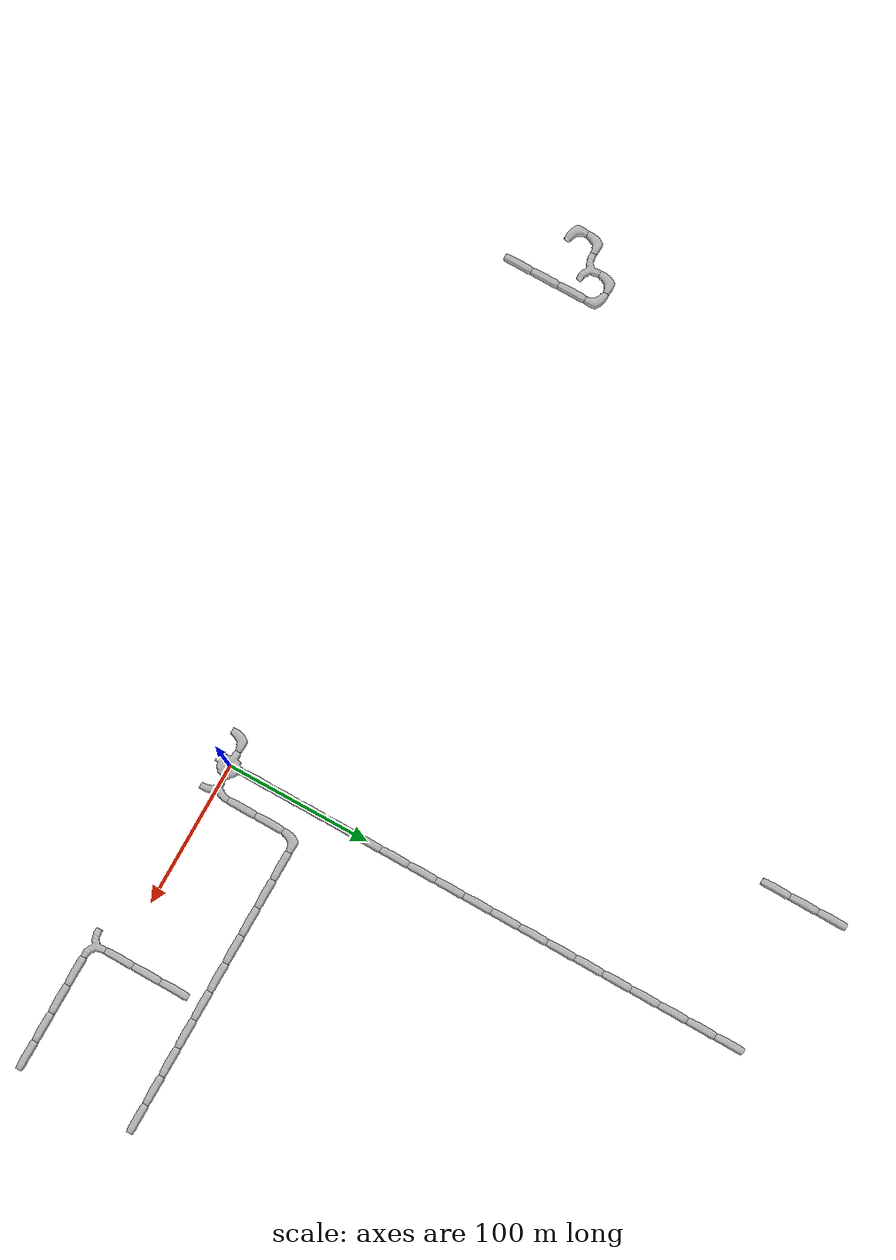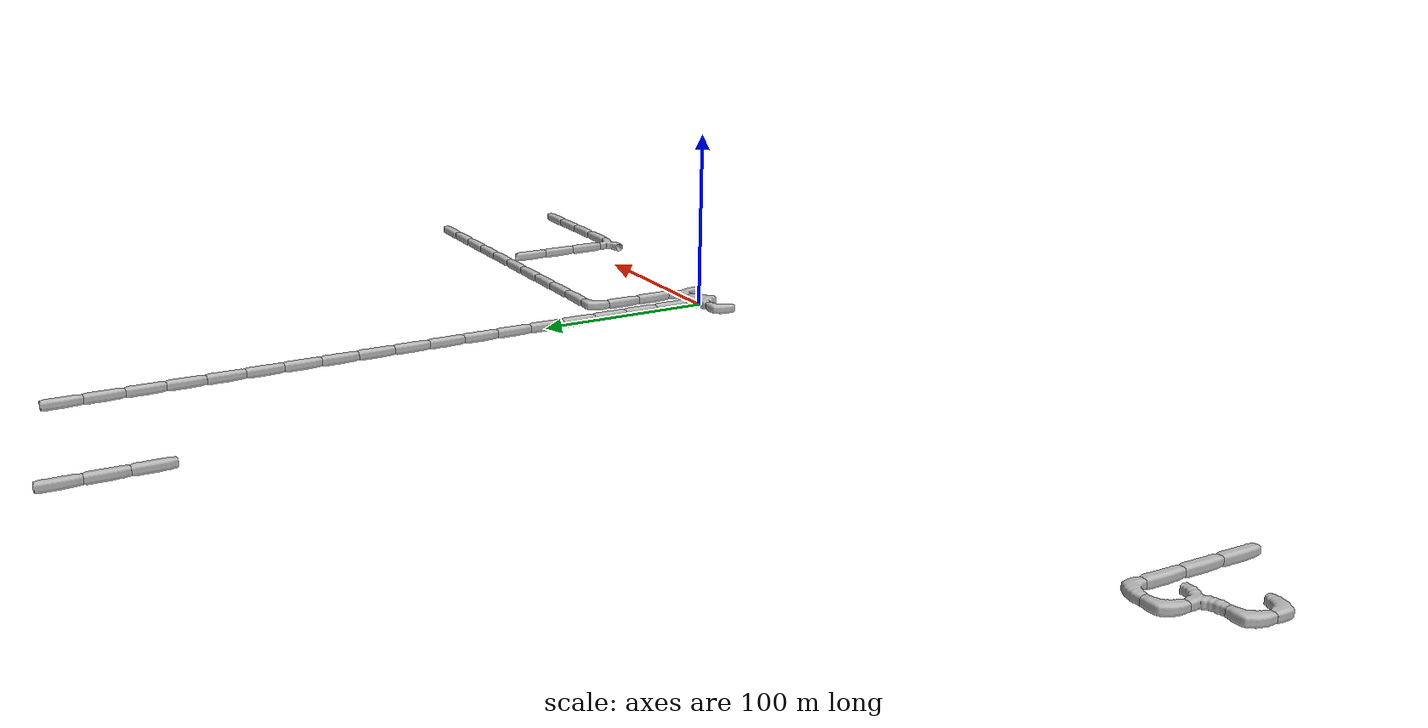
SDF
<sdf version="1.6">
 <world name="cave_8000_16">
  <include>
   <static>true</static>
   <name>cave_0_0</name>
   <pose>0 0 0 0 0 -1.5707963267948966</pose>
   <uri>model://cave_4way_20m</uri>
  </include>
  <include>
   <static>true</static>
   <name>cave_1_0</name>
   <pose>20 0 0 0 0 1.5707963267948966</pose>
   <uri>model://cave_3way_20m</uri>
  </include>
  <include>
   <static>true</static>
   <name>cave_11_-1</name>
   <pose>220 -20 0 0 0 1.5707963267948966</pose>
   <uri>model://cave_straight_20m</uri>
  </include>
  <include>
   <static>true</static>
   <name>cave_10_-1</name>
   <pose>200 -20 0 0 0 1.5707963267948966</pose>
   <uri>model://cave_straight_20m</uri>
  </include>
  <include>
   <static>true</static>
   <name>cave_9_-1</name>
   <pose>180 -20 0 0 0 1.5707963267948966</pose>
   <uri>model://cave_straight_20m</uri>
  </include>
  <include>
   <static>true</static>
   <name>cave_8_-1</name>
   <pose>160 -20 0 0 0 1.5707963267948966</pose>
   <uri>model://cave_straight_20m</uri>
  </include>
  <include>
   <static>true</static>
   <name>cave_7_-1</name>
   <pose>140 -20 0 0 0 0.0</pose>
   <uri>model://cave_3way_20m</uri>
  </include>
  <include>
   <static>true</static>
   <name>cave_7_0</name>
   <pose>140 0 0 0 0 0.0</pose>
   <uri>model://cave_straight_20m</uri>
  </include>
  <include>
   <static>true</static>
   <name>cave_7_1</name>
   <pose>140 20 0 0 0 0.0</pose>
   <uri>model://cave_straight_20m</uri>
  </include>
  <include>
   <static>true</static>
   <name>cave_7_2</name>
   <pose>140 40 0 0 0 0.0</pose>
   <uri>model://cave_straight_20m</uri>
  </include>
  <include>
   <static>true</static>
   <name>cave_1_1</name>
   <pose>20 20 0 0 0 0.0</pose>
   <uri>model://cave_straight_20m</uri>
  </include>
  <include>
   <static>true</static>
   <name>cave_1_2</name>
   <pose>20 40 0 0 0 0.0</pose>
   <uri>model://cave_straight_20m</uri>
  </include>
  <include>
   <static>true</static>
   <name>cave_1_3</name>
   <pose>20 60 0 0 0 -1.5707963267948966</pose>
   <uri>model://cave_L_20m</uri>
  </include>
  <include>
   <static>true</static>
   <name>cave_2_3</name>
   <pose>40 60 0 0 0 1.5707963267948966</pose>
   <uri>model://cave_straight_20m</uri>
  </include>
  <include>
   <static>true</static>
   <name>cave_3_3</name>
   <pose>60 60 0 0 0 1.5707963267948966</pose>
   <uri>model://cave_straight_20m</uri>
  </include>
  <include>
   <static>true</static>
   <name>cave_4_3</name>
   <pose>80 60 0 0 0 1.5707963267948966</pose>
   <uri>model://cave_straight_20m</uri>
  </include>
  <include>
   <static>true</static>
   <name>cave_5_3</name>
   <pose>100 60 0 0 0 1.5707963267948966</pose>
   <uri>model://cave_straight_20m</uri>
  </include>
  <include>
   <static>true</static>
   <name>cave_6_3</name>
   <pose>120 60 0 0 0 1.5707963267948966</pose>
   <uri>model://cave_straight_20m</uri>
  </include>
  <include>
   <static>true</static>
   <name>cave_7_3</name>
   <pose>140 60 0 0 0 1.5707963267948966</pose>
   <uri>model://cave_straight_20m</uri>
  </include>
  <include>
   <static>true</static>
   <name>cave_8_3</name>
   <pose>160 60 0 0 0 1.5707963267948966</pose>
   <uri>model://cave_straight_20m</uri>
  </include>
  <include>
   <static>true</static>
   <name>cave_9_3</name>
   <pose>180 60 0 0 0 1.5707963267948966</pose>
   <uri>model://cave_straight_20m</uri>
  </include>
  <include>
   <static>true</static>
   <name>cave_10_3</name>
   <pose>200 60 0 0 0 1.5707963267948966</pose>
   <uri>model://cave_straight_20m</uri>
  </include>
  <include>
   <static>true</static>
   <name>cave_11_3</name>
   <pose>220 60 0 0 0 1.5707963267948966</pose>
   <uri>model://cave_straight_20m</uri>
  </include>
  <include>
   <static>true</static>
   <name>cave_-19_0</name>
   <pose>-380 0 0 0 0 0.0</pose>
   <uri>model://cave_straight_20m</uri>
  </include>
  <include>
   <static>true</static>
   <name>cave_-19_1</name>
   <pose>-380 20 0 0 0 0.0</pose>
   <uri>model://cave_straight_20m</uri>
  </include>
  <include>
   <static>true</static>
   <name>cave_-19_2</name>
   <pose>-380 40 0 0 0 0.0</pose>
   <uri>model://cave_straight_20m</uri>
  </include>
  <include>
   <static>true</static>
   <name>cave_-19_3</name>
   <pose>-380 60 0 0 0 3.141592653589793</pose>
   <uri>model://cave_L_20m</uri>
  </include>
  <include>
   <static>true</static>
   <name>cave_-20_3</name>
   <pose>-400 60 0 0 0 -1.5707963267948966</pose>
   <uri>model://cave_L_20m</uri>
  </include>
  <include>
   <static>true</static>
   <name>cave_-20_2</name>
   <pose>-400 40 0 0 0 0.0</pose>
   <uri>model://cave_3way_20m</uri>
  </include>
  <include>
   <static>true</static>
   <name>cave_-21_2</name>
   <pose>-420 40 0 0 0 -1.5707963267948966</pose>
   <uri>model://cave_L_20m</uri>
  </include>
  <include>
   <static>true</static>
   <name>cave_-21_1</name>
   <pose>-420 20 0 0 0 0.0</pose>
   <uri>model://cave_L_20m</uri>
  </include>
  <include>
   <static>true</static>
   <name>cave_-1_0</name>
   <pose>-20 0 0 0 0 -1.5707963267948966</pose>
   <uri>model://cave_L_20m</uri>
  </include>
  <include>
   <static>true</static>
   <name>cave_0_1</name>
   <pose>0 20 0 0 0 0.0</pose>
   <uri>model://cave_straight_20m</uri>
  </include>
  <include>
   <static>true</static>
   <name>cave_0_2</name>
   <pose>0 40 0 0 0 0.0</pose>
   <uri>model://cave_straight_20m</uri>
  </include>
  <include>
   <static>true</static>
   <name>cave_0_3</name>
   <pose>0 60 0 0 0 0.0</pose>
   <uri>model://cave_straight_20m</uri>
  </include>
  <include>
   <static>true</static>
   <name>cave_0_4</name>
   <pose>0 80 0 0 0 0.0</pose>
   <uri>model://cave_straight_20m</uri>
  </include>
  <include>
   <static>true</static>
   <name>cave_0_5</name>
   <pose>0 100 0 0 0 0.0</pose>
   <uri>model://cave_straight_20m</uri>
  </include>
  <include>
   <static>true</static>
   <name>cave_0_6</name>
   <pose>0 120 0 0 0 0.0</pose>
   <uri>model://cave_straight_20m</uri>
  </include>
  <include>
   <static>true</static>
   <name>cave_0_7</name>
   <pose>0 140 0 0 0 0.0</pose>
   <uri>model://cave_straight_20m</uri>
  </include>
  <include>
   <static>true</static>
   <name>cave_0_8</name>
   <pose>0 160 0 0 0 0.0</pose>
   <uri>model://cave_straight_20m</uri>
  </include>
  <include>
   <static>true</static>
   <name>cave_0_9</name>
   <pose>0 180 0 0 0 0.0</pose>
   <uri>model://cave_straight_20m</uri>
  </include>
  <include>
   <static>true</static>
   <name>cave_0_10</name>
   <pose>0 200 0 0 0 0.0</pose>
   <uri>model://cave_straight_20m</uri>
  </include>
  <include>
   <static>true</static>
   <name>cave_0_11</name>
   <pose>0 220 0 0 0 0.0</pose>
   <uri>model://cave_straight_20m</uri>
  </include>
  <include>
   <static>true</static>
   <name>cave_0_12</name>
   <pose>0 240 0 0 0 0.0</pose>
   <uri>model://cave_straight_20m</uri>
  </include>
  <include>
   <static>true</static>
   <name>cave_0_13</name>
   <pose>0 260 0 0 0 0.0</pose>
   <uri>model://cave_straight_20m</uri>
  </include>
  <include>
   <static>true</static>
   <name>cave_0_14</name>
   <pose>0 280 0 0 0 0.0</pose>
   <uri>model://cave_straight_20m</uri>
  </include>
  <include>
   <static>true</static>
   <name>cave_0_15</name>
   <pose>0 300 0 0 0 0.0</pose>
   <uri>model://cave_straight_20m</uri>
  </include>
  <include>
   <static>true</static>
   <name>cave_0_16</name>
   <pose>0 320 0 0 0 0.0</pose>
   <uri>model://cave_straight_20m</uri>
  </include>
  <include>
   <static>true</static>
   <name>cave_0_17</name>
   <pose>0 340 0 0 0 0.0</pose>
   <uri>model://cave_straight_20m</uri>
  </include>
  <include>
   <static>true</static>
   <name>cave_0_18</name>
   <pose>0 360 0 0 0 0.0</pose>
   <uri>model://cave_straight_20m</uri>
  </include>
  <include>
   <static>true</static>
   <name>cave_-5_19</name>
   <pose>-100 380 0 0 0 0.0</pose>
   <uri>model://cave_straight_20m</uri>
  </include>
  <include>
   <static>true</static>
   <name>cave_-5_18</name>
   <pose>-100 360 0 0 0 0.0</pose>
   <uri>model://cave_straight_20m</uri>
  </include>
  <include>
   <static>true</static>
   <name>cave_-5_17</name>
   <pose>-100 340 0 0 0 0.0</pose>
   <uri>model://cave_straight_20m</uri>
  </include>
 </world>
</sdf>
